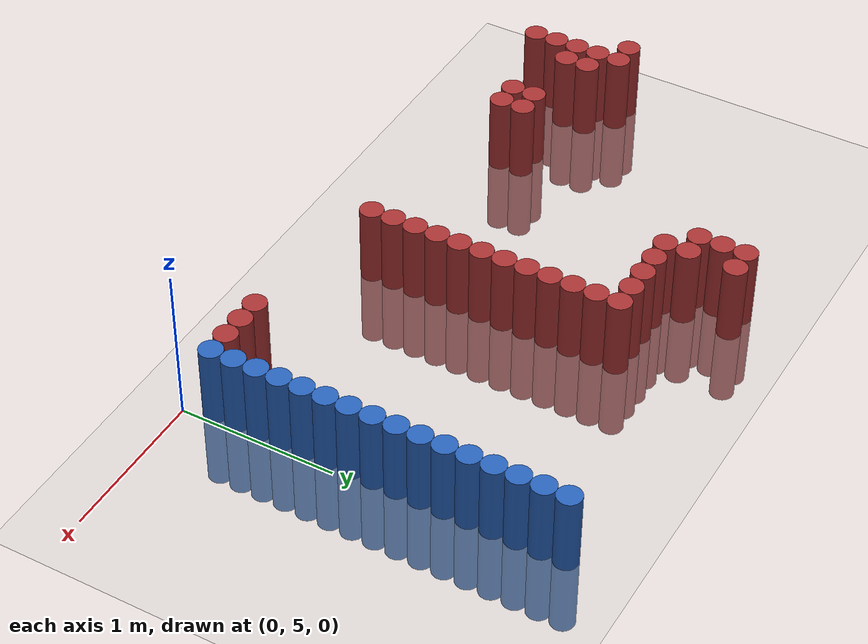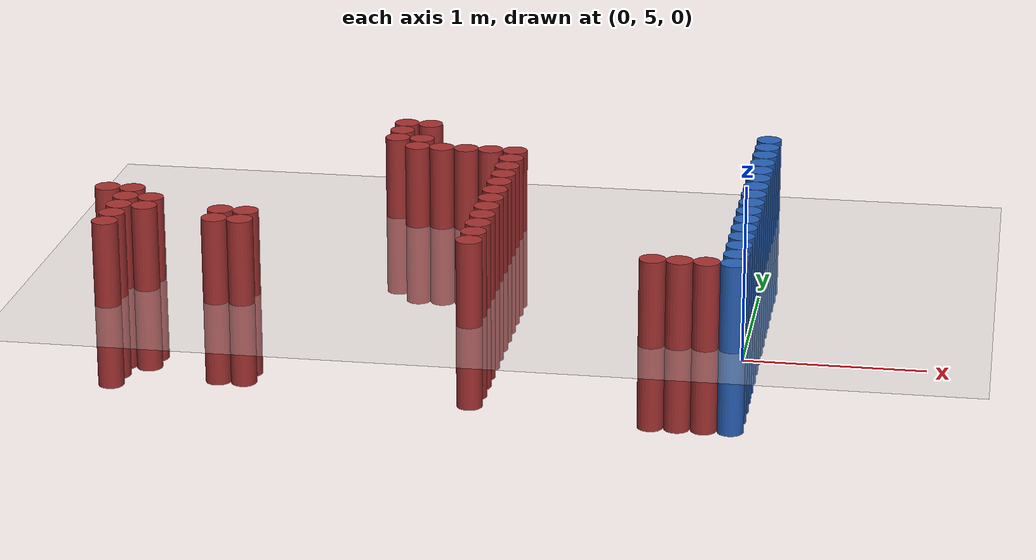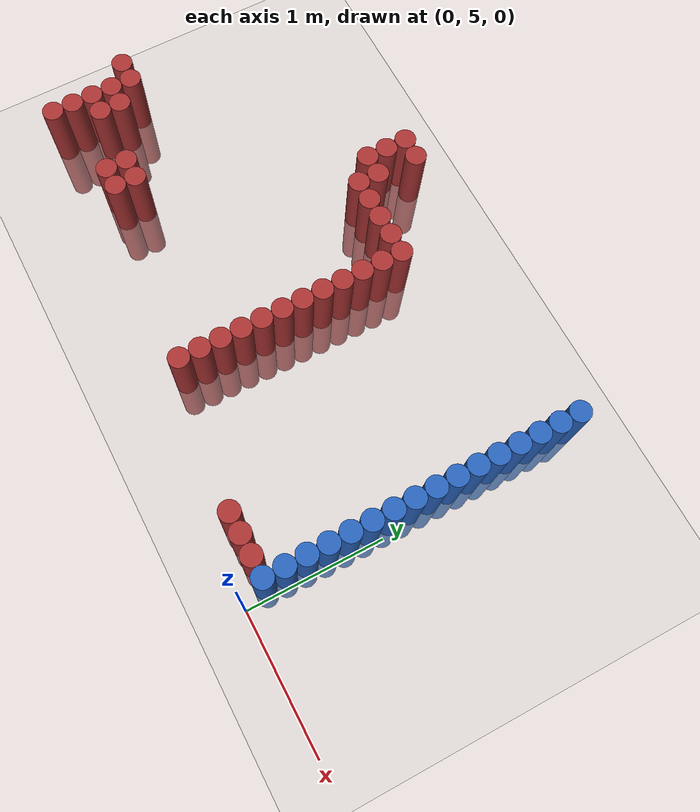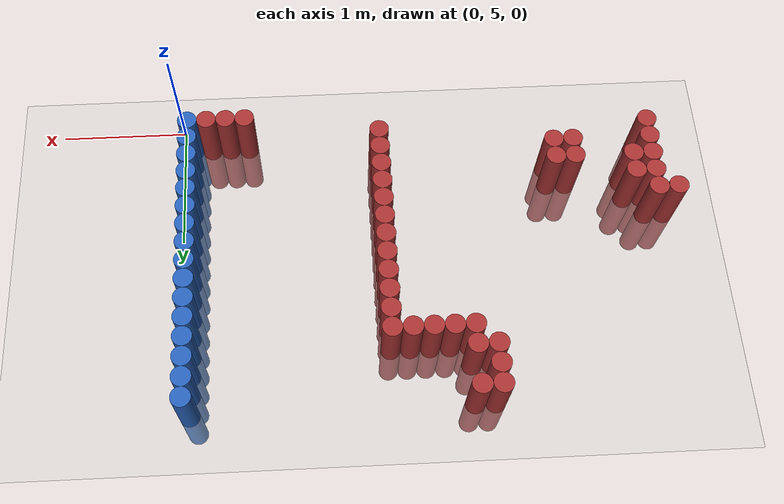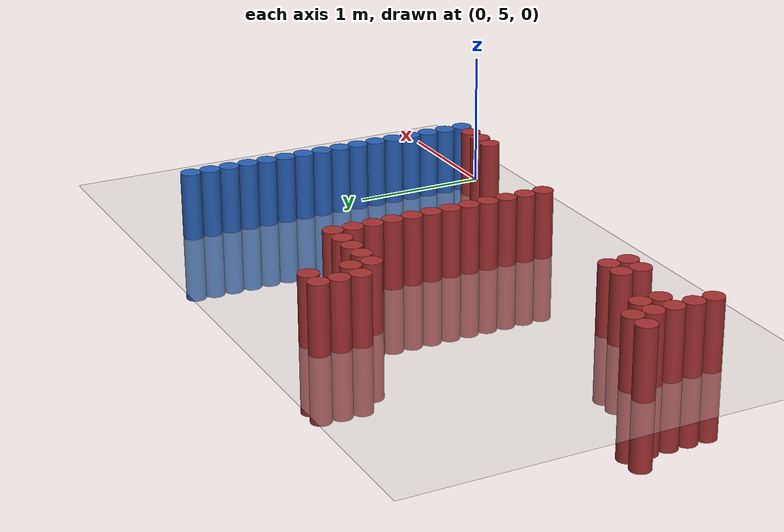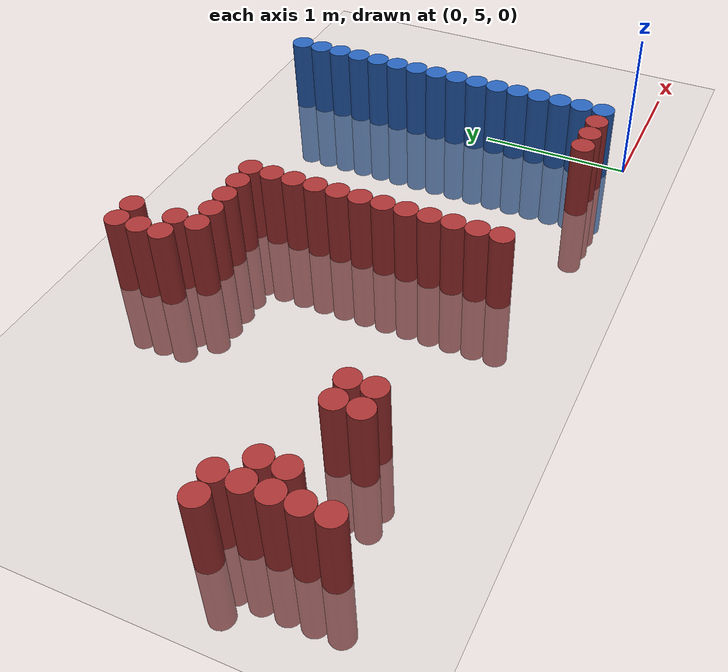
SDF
<sdf version="1.6">
 <world name="default">
  <model name="ground_plane">
   <static>1</static>
   <link name="link">
    <collision name="collision">
     <geometry><plane><normal>0 0 1</normal><size>100 100</size></plane></geometry>
     <surface><friction><ode><mu>100</mu><mu2>50</mu2></ode></friction></surface>
    </collision>
    <visual name="visual">
     <cast_shadows>0</cast_shadows>
     <geometry><plane><normal>0 0 1</normal><size>100 100</size></plane></geometry>
     <material>
      <script><uri>file://media/materials/scripts/gazebo.material</uri><name>Gazebo/Grey</name></script>
     </material>
    </visual>
   </link>
  </model>
  <model name="unit_cylinder_254">
   <static>1</static>
   <pose>-3.825000 5.925000 0.000000 0.000000 0.000000 0.000000</pose>
   <link name="link">
    <inertial>
     <mass>1</mass>
     <inertia><ixx>0.145833</ixx><ixy>0</ixy><ixz>0</ixz><iyy>0.145833</iyy><iyz>0</iyz><izz>0.125</izz></inertia>
    </inertial>
    <collision name="collision">
     <geometry><cylinder><radius>0.075000</radius><length>1</length></cylinder></geometry>
    </collision>
    <visual name="visual">
     <geometry><cylinder><radius>0.075000</radius><length>1</length></cylinder></geometry>
     <material>
      <ambient>0.648000 0.192000 0.192000 1</ambient>
      <diffuse>0.648000 0.192000 0.192000 1</diffuse>
     </material>
     <material>
      <script><name>Gazebo/Grey</name><uri>file://media/materials/scripts/gazebo.material</uri></script>
     </material>
    </visual>
   </link>
  </model>
  <model name="unit_cylinder_259">
   <static>1</static>
   <pose>-3.675000 5.325000 0.000000 0.000000 0.000000 0.000000</pose>
   <link name="link">
    <inertial>
     <mass>1</mass>
     <inertia><ixx>0.145833</ixx><ixy>0</ixy><ixz>0</ixz><iyy>0.145833</iyy><iyz>0</iyz><izz>0.125</izz></inertia>
    </inertial>
    <collision name="collision">
     <geometry><cylinder><radius>0.075000</radius><length>1</length></cylinder></geometry>
    </collision>
    <visual name="visual">
     <geometry><cylinder><radius>0.075000</radius><length>1</length></cylinder></geometry>
     <material>
      <ambient>0.648000 0.192000 0.192000 1</ambient>
      <diffuse>0.648000 0.192000 0.192000 1</diffuse>
     </material>
     <material>
      <script><name>Gazebo/Grey</name><uri>file://media/materials/scripts/gazebo.material</uri></script>
     </material>
    </visual>
   </link>
  </model>
  <model name="unit_cylinder_260">
   <static>1</static>
   <pose>-3.675000 5.475000 0.000000 0.000000 0.000000 0.000000</pose>
   <link name="link">
    <inertial>
     <mass>1</mass>
     <inertia><ixx>0.145833</ixx><ixy>0</ixy><ixz>0</ixz><iyy>0.145833</iyy><iyz>0</iyz><izz>0.125</izz></inertia>
    </inertial>
    <collision name="collision">
     <geometry><cylinder><radius>0.075000</radius><length>1</length></cylinder></geometry>
    </collision>
    <visual name="visual">
     <geometry><cylinder><radius>0.075000</radius><length>1</length></cylinder></geometry>
     <material>
      <ambient>0.648000 0.192000 0.192000 1</ambient>
      <diffuse>0.648000 0.192000 0.192000 1</diffuse>
     </material>
     <material>
      <script><name>Gazebo/Grey</name><uri>file://media/materials/scripts/gazebo.material</uri></script>
     </material>
    </visual>
   </link>
  </model>
  <model name="unit_cylinder_261">
   <static>1</static>
   <pose>-3.675000 5.625000 0.000000 0.000000 0.000000 0.000000</pose>
   <link name="link">
    <inertial>
     <mass>1</mass>
     <inertia><ixx>0.145833</ixx><ixy>0</ixy><ixz>0</ixz><iyy>0.145833</iyy><iyz>0</iyz><izz>0.125</izz></inertia>
    </inertial>
    <collision name="collision">
     <geometry><cylinder><radius>0.075000</radius><length>1</length></cylinder></geometry>
    </collision>
    <visual name="visual">
     <geometry><cylinder><radius>0.075000</radius><length>1</length></cylinder></geometry>
     <material>
      <ambient>0.648000 0.192000 0.192000 1</ambient>
      <diffuse>0.648000 0.192000 0.192000 1</diffuse>
     </material>
     <material>
      <script><name>Gazebo/Grey</name><uri>file://media/materials/scripts/gazebo.material</uri></script>
     </material>
    </visual>
   </link>
  </model>
  <model name="unit_cylinder_262">
   <static>1</static>
   <pose>-3.675000 5.775000 0.000000 0.000000 0.000000 0.000000</pose>
   <link name="link">
    <inertial>
     <mass>1</mass>
     <inertia><ixx>0.145833</ixx><ixy>0</ixy><ixz>0</ixz><iyy>0.145833</iyy><iyz>0</iyz><izz>0.125</izz></inertia>
    </inertial>
    <collision name="collision">
     <geometry><cylinder><radius>0.075000</radius><length>1</length></cylinder></geometry>
    </collision>
    <visual name="visual">
     <geometry><cylinder><radius>0.075000</radius><length>1</length></cylinder></geometry>
     <material>
      <ambient>0.648000 0.192000 0.192000 1</ambient>
      <diffuse>0.648000 0.192000 0.192000 1</diffuse>
     </material>
     <material>
      <script><name>Gazebo/Grey</name><uri>file://media/materials/scripts/gazebo.material</uri></script>
     </material>
    </visual>
   </link>
  </model>
  <model name="unit_cylinder_263">
   <static>1</static>
   <pose>-3.675000 5.925000 0.000000 0.000000 0.000000 0.000000</pose>
   <link name="link">
    <inertial>
     <mass>1</mass>
     <inertia><ixx>0.145833</ixx><ixy>0</ixy><ixz>0</ixz><iyy>0.145833</iyy><iyz>0</iyz><izz>0.125</izz></inertia>
    </inertial>
    <collision name="collision">
     <geometry><cylinder><radius>0.075000</radius><length>1</length></cylinder></geometry>
    </collision>
    <visual name="visual">
     <geometry><cylinder><radius>0.075000</radius><length>1</length></cylinder></geometry>
     <material>
      <ambient>0.648000 0.192000 0.192000 1</ambient>
      <diffuse>0.648000 0.192000 0.192000 1</diffuse>
     </material>
     <material>
      <script><name>Gazebo/Grey</name><uri>file://media/materials/scripts/gazebo.material</uri></script>
     </material>
    </visual>
   </link>
  </model>
  <model name="unit_cylinder_269">
   <static>1</static>
   <pose>-3.525000 5.625000 0.000000 0.000000 0.000000 0.000000</pose>
   <link name="link">
    <inertial>
     <mass>1</mass>
     <inertia><ixx>0.145833</ixx><ixy>0</ixy><ixz>0</ixz><iyy>0.145833</iyy><iyz>0</iyz><izz>0.125</izz></inertia>
    </inertial>
    <collision name="collision">
     <geometry><cylinder><radius>0.075000</radius><length>1</length></cylinder></geometry>
    </collision>
    <visual name="visual">
     <geometry><cylinder><radius>0.075000</radius><length>1</length></cylinder></geometry>
     <material>
      <ambient>0.648000 0.192000 0.192000 1</ambient>
      <diffuse>0.648000 0.192000 0.192000 1</diffuse>
     </material>
     <material>
      <script><name>Gazebo/Grey</name><uri>file://media/materials/scripts/gazebo.material</uri></script>
     </material>
    </visual>
   </link>
  </model>
  <model name="unit_cylinder_270">
   <static>1</static>
   <pose>-3.525000 5.775000 0.000000 0.000000 0.000000 0.000000</pose>
   <link name="link">
    <inertial>
     <mass>1</mass>
     <inertia><ixx>0.145833</ixx><ixy>0</ixy><ixz>0</ixz><iyy>0.145833</iyy><iyz>0</iyz><izz>0.125</izz></inertia>
    </inertial>
    <collision name="collision">
     <geometry><cylinder><radius>0.075000</radius><length>1</length></cylinder></geometry>
    </collision>
    <visual name="visual">
     <geometry><cylinder><radius>0.075000</radius><length>1</length></cylinder></geometry>
     <material>
      <ambient>0.648000 0.192000 0.192000 1</ambient>
      <diffuse>0.648000 0.192000 0.192000 1</diffuse>
     </material>
     <material>
      <script><name>Gazebo/Grey</name><uri>file://media/materials/scripts/gazebo.material</uri></script>
     </material>
    </visual>
   </link>
  </model>
  <model name="unit_cylinder_273">
   <static>1</static>
   <pose>-3.075000 5.475000 0.000000 0.000000 0.000000 0.000000</pose>
   <link name="link">
    <inertial>
     <mass>1</mass>
     <inertia><ixx>0.145833</ixx><ixy>0</ixy><ixz>0</ixz><iyy>0.145833</iyy><iyz>0</iyz><izz>0.125</izz></inertia>
    </inertial>
    <collision name="collision">
     <geometry><cylinder><radius>0.075000</radius><length>1</length></cylinder></geometry>
    </collision>
    <visual name="visual">
     <geometry><cylinder><radius>0.075000</radius><length>1</length></cylinder></geometry>
     <material>
      <ambient>0.648000 0.192000 0.192000 1</ambient>
      <diffuse>0.648000 0.192000 0.192000 1</diffuse>
     </material>
     <material>
      <script><name>Gazebo/Grey</name><uri>file://media/materials/scripts/gazebo.material</uri></script>
     </material>
    </visual>
   </link>
  </model>
  <model name="unit_cylinder_274">
   <static>1</static>
   <pose>-3.075000 5.625000 0.000000 0.000000 0.000000 0.000000</pose>
   <link name="link">
    <inertial>
     <mass>1</mass>
     <inertia><ixx>0.145833</ixx><ixy>0</ixy><ixz>0</ixz><iyy>0.145833</iyy><iyz>0</iyz><izz>0.125</izz></inertia>
    </inertial>
    <collision name="collision">
     <geometry><cylinder><radius>0.075000</radius><length>1</length></cylinder></geometry>
    </collision>
    <visual name="visual">
     <geometry><cylinder><radius>0.075000</radius><length>1</length></cylinder></geometry>
     <material>
      <ambient>0.648000 0.192000 0.192000 1</ambient>
      <diffuse>0.648000 0.192000 0.192000 1</diffuse>
     </material>
     <material>
      <script><name>Gazebo/Grey</name><uri>file://media/materials/scripts/gazebo.material</uri></script>
     </material>
    </visual>
   </link>
  </model>
  <model name="unit_cylinder_275">
   <static>1</static>
   <pose>-2.925000 5.475000 0.000000 0.000000 0.000000 0.000000</pose>
   <link name="link">
    <inertial>
     <mass>1</mass>
     <inertia><ixx>0.145833</ixx><ixy>0</ixy><ixz>0</ixz><iyy>0.145833</iyy><iyz>0</iyz><izz>0.125</izz></inertia>
    </inertial>
    <collision name="collision">
     <geometry><cylinder><radius>0.075000</radius><length>1</length></cylinder></geometry>
    </collision>
    <visual name="visual">
     <geometry><cylinder><radius>0.075000</radius><length>1</length></cylinder></geometry>
     <material>
      <ambient>0.648000 0.192000 0.192000 1</ambient>
      <diffuse>0.648000 0.192000 0.192000 1</diffuse>
     </material>
     <material>
      <script><name>Gazebo/Grey</name><uri>file://media/materials/scripts/gazebo.material</uri></script>
     </material>
    </visual>
   </link>
  </model>
  <model name="unit_cylinder_276">
   <static>1</static>
   <pose>-2.925000 5.625000 0.000000 0.000000 0.000000 0.000000</pose>
   <link name="link">
    <inertial>
     <mass>1</mass>
     <inertia><ixx>0.145833</ixx><ixy>0</ixy><ixz>0</ixz><iyy>0.145833</iyy><iyz>0</iyz><izz>0.125</izz></inertia>
    </inertial>
    <collision name="collision">
     <geometry><cylinder><radius>0.075000</radius><length>1</length></cylinder></geometry>
    </collision>
    <visual name="visual">
     <geometry><cylinder><radius>0.075000</radius><length>1</length></cylinder></geometry>
     <material>
      <ambient>0.648000 0.192000 0.192000 1</ambient>
      <diffuse>0.648000 0.192000 0.192000 1</diffuse>
     </material>
     <material>
      <script><name>Gazebo/Grey</name><uri>file://media/materials/scripts/gazebo.material</uri></script>
     </material>
    </visual>
   </link>
  </model>
  <model name="unit_cylinder_277">
   <static>1</static>
   <pose>-2.325000 7.125000 0.000000 0.000000 0.000000 0.000000</pose>
   <link name="link">
    <inertial>
     <mass>1</mass>
     <inertia><ixx>0.145833</ixx><ixy>0</ixy><ixz>0</ixz><iyy>0.145833</iyy><iyz>0</iyz><izz>0.125</izz></inertia>
    </inertial>
    <collision name="collision">
     <geometry><cylinder><radius>0.075000</radius><length>1</length></cylinder></geometry>
    </collision>
    <visual name="visual">
     <geometry><cylinder><radius>0.075000</radius><length>1</length></cylinder></geometry>
     <material>
      <ambient>0.648000 0.192000 0.192000 1</ambient>
      <diffuse>0.648000 0.192000 0.192000 1</diffuse>
     </material>
     <material>
      <script><name>Gazebo/Grey</name><uri>file://media/materials/scripts/gazebo.material</uri></script>
     </material>
    </visual>
   </link>
  </model>
  <model name="unit_cylinder_278">
   <static>1</static>
   <pose>-2.325000 7.275000 0.000000 0.000000 0.000000 0.000000</pose>
   <link name="link">
    <inertial>
     <mass>1</mass>
     <inertia><ixx>0.145833</ixx><ixy>0</ixy><ixz>0</ixz><iyy>0.145833</iyy><iyz>0</iyz><izz>0.125</izz></inertia>
    </inertial>
    <collision name="collision">
     <geometry><cylinder><radius>0.075000</radius><length>1</length></cylinder></geometry>
    </collision>
    <visual name="visual">
     <geometry><cylinder><radius>0.075000</radius><length>1</length></cylinder></geometry>
     <material>
      <ambient>0.648000 0.192000 0.192000 1</ambient>
      <diffuse>0.648000 0.192000 0.192000 1</diffuse>
     </material>
     <material>
      <script><name>Gazebo/Grey</name><uri>file://media/materials/scripts/gazebo.material</uri></script>
     </material>
    </visual>
   </link>
  </model>
  <model name="unit_cylinder_279">
   <static>1</static>
   <pose>-2.325000 7.425000 0.000000 0.000000 0.000000 0.000000</pose>
   <link name="link">
    <inertial>
     <mass>1</mass>
     <inertia><ixx>0.145833</ixx><ixy>0</ixy><ixz>0</ixz><iyy>0.145833</iyy><iyz>0</iyz><izz>0.125</izz></inertia>
    </inertial>
    <collision name="collision">
     <geometry><cylinder><radius>0.075000</radius><length>1</length></cylinder></geometry>
    </collision>
    <visual name="visual">
     <geometry><cylinder><radius>0.075000</radius><length>1</length></cylinder></geometry>
     <material>
      <ambient>0.648000 0.192000 0.192000 1</ambient>
      <diffuse>0.648000 0.192000 0.192000 1</diffuse>
     </material>
     <material>
      <script><name>Gazebo/Grey</name><uri>file://media/materials/scripts/gazebo.material</uri></script>
     </material>
    </visual>
   </link>
  </model>
  <model name="unit_cylinder_280">
   <static>1</static>
   <pose>-2.175000 6.975000 0.000000 0.000000 0.000000 0.000000</pose>
   <link name="link">
    <inertial>
     <mass>1</mass>
     <inertia><ixx>0.145833</ixx><ixy>0</ixy><ixz>0</ixz><iyy>0.145833</iyy><iyz>0</iyz><izz>0.125</izz></inertia>
    </inertial>
    <collision name="collision">
     <geometry><cylinder><radius>0.075000</radius><length>1</length></cylinder></geometry>
    </collision>
    <visual name="visual">
     <geometry><cylinder><radius>0.075000</radius><length>1</length></cylinder></geometry>
     <material>
      <ambient>0.648000 0.192000 0.192000 1</ambient>
      <diffuse>0.648000 0.192000 0.192000 1</diffuse>
     </material>
     <material>
      <script><name>Gazebo/Grey</name><uri>file://media/materials/scripts/gazebo.material</uri></script>
     </material>
    </visual>
   </link>
  </model>
  <model name="unit_cylinder_281">
   <static>1</static>
   <pose>-2.175000 7.125000 0.000000 0.000000 0.000000 0.000000</pose>
   <link name="link">
    <inertial>
     <mass>1</mass>
     <inertia><ixx>0.145833</ixx><ixy>0</ixy><ixz>0</ixz><iyy>0.145833</iyy><iyz>0</iyz><izz>0.125</izz></inertia>
    </inertial>
    <collision name="collision">
     <geometry><cylinder><radius>0.075000</radius><length>1</length></cylinder></geometry>
    </collision>
    <visual name="visual">
     <geometry><cylinder><radius>0.075000</radius><length>1</length></cylinder></geometry>
     <material>
      <ambient>0.648000 0.192000 0.192000 1</ambient>
      <diffuse>0.648000 0.192000 0.192000 1</diffuse>
     </material>
     <material>
      <script><name>Gazebo/Grey</name><uri>file://media/materials/scripts/gazebo.material</uri></script>
     </material>
    </visual>
   </link>
  </model>
  <model name="unit_cylinder_282">
   <static>1</static>
   <pose>-2.175000 7.425000 0.000000 0.000000 0.000000 0.000000</pose>
   <link name="link">
    <inertial>
     <mass>1</mass>
     <inertia><ixx>0.145833</ixx><ixy>0</ixy><ixz>0</ixz><iyy>0.145833</iyy><iyz>0</iyz><izz>0.125</izz></inertia>
    </inertial>
    <collision name="collision">
     <geometry><cylinder><radius>0.075000</radius><length>1</length></cylinder></geometry>
    </collision>
    <visual name="visual">
     <geometry><cylinder><radius>0.075000</radius><length>1</length></cylinder></geometry>
     <material>
      <ambient>0.648000 0.192000 0.192000 1</ambient>
      <diffuse>0.648000 0.192000 0.192000 1</diffuse>
     </material>
     <material>
      <script><name>Gazebo/Grey</name><uri>file://media/materials/scripts/gazebo.material</uri></script>
     </material>
    </visual>
   </link>
  </model>
  <model name="unit_cylinder_297">
   <static>1</static>
   <pose>-2.025000 6.975000 0.000000 0.000000 0.000000 0.000000</pose>
   <link name="link">
    <inertial>
     <mass>1</mass>
     <inertia><ixx>0.145833</ixx><ixy>0</ixy><ixz>0</ixz><iyy>0.145833</iyy><iyz>0</iyz><izz>0.125</izz></inertia>
    </inertial>
    <collision name="collision">
     <geometry><cylinder><radius>0.075000</radius><length>1</length></cylinder></geometry>
    </collision>
    <visual name="visual">
     <geometry><cylinder><radius>0.075000</radius><length>1</length></cylinder></geometry>
     <material>
      <ambient>0.648000 0.192000 0.192000 1</ambient>
      <diffuse>0.648000 0.192000 0.192000 1</diffuse>
     </material>
     <material>
      <script><name>Gazebo/Grey</name><uri>file://media/materials/scripts/gazebo.material</uri></script>
     </material>
    </visual>
   </link>
  </model>
  <model name="unit_cylinder_299">
   <static>1</static>
   <pose>-1.875000 6.975000 0.000000 0.000000 0.000000 0.000000</pose>
   <link name="link">
    <inertial>
     <mass>1</mass>
     <inertia><ixx>0.145833</ixx><ixy>0</ixy><ixz>0</ixz><iyy>0.145833</iyy><iyz>0</iyz><izz>0.125</izz></inertia>
    </inertial>
    <collision name="collision">
     <geometry><cylinder><radius>0.075000</radius><length>1</length></cylinder></geometry>
    </collision>
    <visual name="visual">
     <geometry><cylinder><radius>0.075000</radius><length>1</length></cylinder></geometry>
     <material>
      <ambient>0.648000 0.192000 0.192000 1</ambient>
      <diffuse>0.648000 0.192000 0.192000 1</diffuse>
     </material>
     <material>
      <script><name>Gazebo/Grey</name><uri>file://media/materials/scripts/gazebo.material</uri></script>
     </material>
    </visual>
   </link>
  </model>
  <model name="unit_cylinder_301">
   <static>1</static>
   <pose>-1.725000 6.975000 0.000000 0.000000 0.000000 0.000000</pose>
   <link name="link">
    <inertial>
     <mass>1</mass>
     <inertia><ixx>0.145833</ixx><ixy>0</ixy><ixz>0</ixz><iyy>0.145833</iyy><iyz>0</iyz><izz>0.125</izz></inertia>
    </inertial>
    <collision name="collision">
     <geometry><cylinder><radius>0.075000</radius><length>1</length></cylinder></geometry>
    </collision>
    <visual name="visual">
     <geometry><cylinder><radius>0.075000</radius><length>1</length></cylinder></geometry>
     <material>
      <ambient>0.648000 0.192000 0.192000 1</ambient>
      <diffuse>0.648000 0.192000 0.192000 1</diffuse>
     </material>
     <material>
      <script><name>Gazebo/Grey</name><uri>file://media/materials/scripts/gazebo.material</uri></script>
     </material>
    </visual>
   </link>
  </model>
  <model name="unit_cylinder_304">
   <static>1</static>
   <pose>-1.575000 5.325000 0.000000 0.000000 0.000000 0.000000</pose>
   <link name="link">
    <inertial>
     <mass>1</mass>
     <inertia><ixx>0.145833</ixx><ixy>0</ixy><ixz>0</ixz><iyy>0.145833</iyy><iyz>0</iyz><izz>0.125</izz></inertia>
    </inertial>
    <collision name="collision">
     <geometry><cylinder><radius>0.075000</radius><length>1</length></cylinder></geometry>
    </collision>
    <visual name="visual">
     <geometry><cylinder><radius>0.075000</radius><length>1</length></cylinder></geometry>
     <material>
      <ambient>0.648000 0.192000 0.192000 1</ambient>
      <diffuse>0.648000 0.192000 0.192000 1</diffuse>
     </material>
     <material>
      <script><name>Gazebo/Grey</name><uri>file://media/materials/scripts/gazebo.material</uri></script>
     </material>
    </visual>
   </link>
  </model>
  <model name="unit_cylinder_305">
   <static>1</static>
   <pose>-1.575000 5.475000 0.000000 0.000000 0.000000 0.000000</pose>
   <link name="link">
    <inertial>
     <mass>1</mass>
     <inertia><ixx>0.145833</ixx><ixy>0</ixy><ixz>0</ixz><iyy>0.145833</iyy><iyz>0</iyz><izz>0.125</izz></inertia>
    </inertial>
    <collision name="collision">
     <geometry><cylinder><radius>0.075000</radius><length>1</length></cylinder></geometry>
    </collision>
    <visual name="visual">
     <geometry><cylinder><radius>0.075000</radius><length>1</length></cylinder></geometry>
     <material>
      <ambient>0.648000 0.192000 0.192000 1</ambient>
      <diffuse>0.648000 0.192000 0.192000 1</diffuse>
     </material>
     <material>
      <script><name>Gazebo/Grey</name><uri>file://media/materials/scripts/gazebo.material</uri></script>
     </material>
    </visual>
   </link>
  </model>
  <model name="unit_cylinder_306">
   <static>1</static>
   <pose>-1.575000 5.625000 0.000000 0.000000 0.000000 0.000000</pose>
   <link name="link">
    <inertial>
     <mass>1</mass>
     <inertia><ixx>0.145833</ixx><ixy>0</ixy><ixz>0</ixz><iyy>0.145833</iyy><iyz>0</iyz><izz>0.125</izz></inertia>
    </inertial>
    <collision name="collision">
     <geometry><cylinder><radius>0.075000</radius><length>1</length></cylinder></geometry>
    </collision>
    <visual name="visual">
     <geometry><cylinder><radius>0.075000</radius><length>1</length></cylinder></geometry>
     <material>
      <ambient>0.648000 0.192000 0.192000 1</ambient>
      <diffuse>0.648000 0.192000 0.192000 1</diffuse>
     </material>
     <material>
      <script><name>Gazebo/Grey</name><uri>file://media/materials/scripts/gazebo.material</uri></script>
     </material>
    </visual>
   </link>
  </model>
  <model name="unit_cylinder_307">
   <static>1</static>
   <pose>-1.575000 5.775000 0.000000 0.000000 0.000000 0.000000</pose>
   <link name="link">
    <inertial>
     <mass>1</mass>
     <inertia><ixx>0.145833</ixx><ixy>0</ixy><ixz>0</ixz><iyy>0.145833</iyy><iyz>0</iyz><izz>0.125</izz></inertia>
    </inertial>
    <collision name="collision">
     <geometry><cylinder><radius>0.075000</radius><length>1</length></cylinder></geometry>
    </collision>
    <visual name="visual">
     <geometry><cylinder><radius>0.075000</radius><length>1</length></cylinder></geometry>
     <material>
      <ambient>0.648000 0.192000 0.192000 1</ambient>
      <diffuse>0.648000 0.192000 0.192000 1</diffuse>
     </material>
     <material>
      <script><name>Gazebo/Grey</name><uri>file://media/materials/scripts/gazebo.material</uri></script>
     </material>
    </visual>
   </link>
  </model>
  <model name="unit_cylinder_308">
   <static>1</static>
   <pose>-1.575000 5.925000 0.000000 0.000000 0.000000 0.000000</pose>
   <link name="link">
    <inertial>
     <mass>1</mass>
     <inertia><ixx>0.145833</ixx><ixy>0</ixy><ixz>0</ixz><iyy>0.145833</iyy><iyz>0</iyz><izz>0.125</izz></inertia>
    </inertial>
    <collision name="collision">
     <geometry><cylinder><radius>0.075000</radius><length>1</length></cylinder></geometry>
    </collision>
    <visual name="visual">
     <geometry><cylinder><radius>0.075000</radius><length>1</length></cylinder></geometry>
     <material>
      <ambient>0.648000 0.192000 0.192000 1</ambient>
      <diffuse>0.648000 0.192000 0.192000 1</diffuse>
     </material>
     <material>
      <script><name>Gazebo/Grey</name><uri>file://media/materials/scripts/gazebo.material</uri></script>
     </material>
    </visual>
   </link>
  </model>
  <model name="unit_cylinder_309">
   <static>1</static>
   <pose>-1.575000 6.075000 0.000000 0.000000 0.000000 0.000000</pose>
   <link name="link">
    <inertial>
     <mass>1</mass>
     <inertia><ixx>0.145833</ixx><ixy>0</ixy><ixz>0</ixz><iyy>0.145833</iyy><iyz>0</iyz><izz>0.125</izz></inertia>
    </inertial>
    <collision name="collision">
     <geometry><cylinder><radius>0.075000</radius><length>1</length></cylinder></geometry>
    </collision>
    <visual name="visual">
     <geometry><cylinder><radius>0.075000</radius><length>1</length></cylinder></geometry>
     <material>
      <ambient>0.648000 0.192000 0.192000 1</ambient>
      <diffuse>0.648000 0.192000 0.192000 1</diffuse>
     </material>
     <material>
      <script><name>Gazebo/Grey</name><uri>file://media/materials/scripts/gazebo.material</uri></script>
     </material>
    </visual>
   </link>
  </model>
  <model name="unit_cylinder_310">
   <static>1</static>
   <pose>-1.575000 6.225000 0.000000 0.000000 0.000000 0.000000</pose>
   <link name="link">
    <inertial>
     <mass>1</mass>
     <inertia><ixx>0.145833</ixx><ixy>0</ixy><ixz>0</ixz><iyy>0.145833</iyy><iyz>0</iyz><izz>0.125</izz></inertia>
    </inertial>
    <collision name="collision">
     <geometry><cylinder><radius>0.075000</radius><length>1</length></cylinder></geometry>
    </collision>
    <visual name="visual">
     <geometry><cylinder><radius>0.075000</radius><length>1</length></cylinder></geometry>
     <material>
      <ambient>0.648000 0.192000 0.192000 1</ambient>
      <diffuse>0.648000 0.192000 0.192000 1</diffuse>
     </material>
     <material>
      <script><name>Gazebo/Grey</name><uri>file://media/materials/scripts/gazebo.material</uri></script>
     </material>
    </visual>
   </link>
  </model>
  <model name="unit_cylinder_311">
   <static>1</static>
   <pose>-1.575000 6.375000 0.000000 0.000000 0.000000 0.000000</pose>
   <link name="link">
    <inertial>
     <mass>1</mass>
     <inertia><ixx>0.145833</ixx><ixy>0</ixy><ixz>0</ixz><iyy>0.145833</iyy><iyz>0</iyz><izz>0.125</izz></inertia>
    </inertial>
    <collision name="collision">
     <geometry><cylinder><radius>0.075000</radius><length>1</length></cylinder></geometry>
    </collision>
    <visual name="visual">
     <geometry><cylinder><radius>0.075000</radius><length>1</length></cylinder></geometry>
     <material>
      <ambient>0.648000 0.192000 0.192000 1</ambient>
      <diffuse>0.648000 0.192000 0.192000 1</diffuse>
     </material>
     <material>
      <script><name>Gazebo/Grey</name><uri>file://media/materials/scripts/gazebo.material</uri></script>
     </material>
    </visual>
   </link>
  </model>
  <model name="unit_cylinder_312">
   <static>1</static>
   <pose>-1.575000 6.525000 0.000000 0.000000 0.000000 0.000000</pose>
   <link name="link">
    <inertial>
     <mass>1</mass>
     <inertia><ixx>0.145833</ixx><ixy>0</ixy><ixz>0</ixz><iyy>0.145833</iyy><iyz>0</iyz><izz>0.125</izz></inertia>
    </inertial>
    <collision name="collision">
     <geometry><cylinder><radius>0.075000</radius><length>1</length></cylinder></geometry>
    </collision>
    <visual name="visual">
     <geometry><cylinder><radius>0.075000</radius><length>1</length></cylinder></geometry>
     <material>
      <ambient>0.648000 0.192000 0.192000 1</ambient>
      <diffuse>0.648000 0.192000 0.192000 1</diffuse>
     </material>
     <material>
      <script><name>Gazebo/Grey</name><uri>file://media/materials/scripts/gazebo.material</uri></script>
     </material>
    </visual>
   </link>
  </model>
  <model name="unit_cylinder_313">
   <static>1</static>
   <pose>-1.575000 6.675000 0.000000 0.000000 0.000000 0.000000</pose>
   <link name="link">
    <inertial>
     <mass>1</mass>
     <inertia><ixx>0.145833</ixx><ixy>0</ixy><ixz>0</ixz><iyy>0.145833</iyy><iyz>0</iyz><izz>0.125</izz></inertia>
    </inertial>
    <collision name="collision">
     <geometry><cylinder><radius>0.075000</radius><length>1</length></cylinder></geometry>
    </collision>
    <visual name="visual">
     <geometry><cylinder><radius>0.075000</radius><length>1</length></cylinder></geometry>
     <material>
      <ambient>0.648000 0.192000 0.192000 1</ambient>
      <diffuse>0.648000 0.192000 0.192000 1</diffuse>
     </material>
     <material>
      <script><name>Gazebo/Grey</name><uri>file://media/materials/scripts/gazebo.material</uri></script>
     </material>
    </visual>
   </link>
  </model>
  <model name="unit_cylinder_314">
   <static>1</static>
   <pose>-1.575000 6.825000 0.000000 0.000000 0.000000 0.000000</pose>
   <link name="link">
    <inertial>
     <mass>1</mass>
     <inertia><ixx>0.145833</ixx><ixy>0</ixy><ixz>0</ixz><iyy>0.145833</iyy><iyz>0</iyz><izz>0.125</izz></inertia>
    </inertial>
    <collision name="collision">
     <geometry><cylinder><radius>0.075000</radius><length>1</length></cylinder></geometry>
    </collision>
    <visual name="visual">
     <geometry><cylinder><radius>0.075000</radius><length>1</length></cylinder></geometry>
     <material>
      <ambient>0.648000 0.192000 0.192000 1</ambient>
      <diffuse>0.648000 0.192000 0.192000 1</diffuse>
     </material>
     <material>
      <script><name>Gazebo/Grey</name><uri>file://media/materials/scripts/gazebo.material</uri></script>
     </material>
    </visual>
   </link>
  </model>
  <model name="unit_cylinder_315">
   <static>1</static>
   <pose>-1.575000 6.975000 0.000000 0.000000 0.000000 0.000000</pose>
   <link name="link">
    <inertial>
     <mass>1</mass>
     <inertia><ixx>0.145833</ixx><ixy>0</ixy><ixz>0</ixz><iyy>0.145833</iyy><iyz>0</iyz><izz>0.125</izz></inertia>
    </inertial>
    <collision name="collision">
     <geometry><cylinder><radius>0.075000</radius><length>1</length></cylinder></geometry>
    </collision>
    <visual name="visual">
     <geometry><cylinder><radius>0.075000</radius><length>1</length></cylinder></geometry>
     <material>
      <ambient>0.648000 0.192000 0.192000 1</ambient>
      <diffuse>0.648000 0.192000 0.192000 1</diffuse>
     </material>
     <material>
      <script><name>Gazebo/Grey</name><uri>file://media/materials/scripts/gazebo.material</uri></script>
     </material>
    </visual>
   </link>
  </model>
  <model name="unit_cylinder_329">
   <static>1</static>
   <pose>-0.525000 5.175000 0.000000 0.000000 0.000000 0.000000</pose>
   <link name="link">
    <inertial>
     <mass>1</mass>
     <inertia><ixx>0.145833</ixx><ixy>0</ixy><ixz>0</ixz><iyy>0.145833</iyy><iyz>0</iyz><izz>0.125</izz></inertia>
    </inertial>
    <collision name="collision">
     <geometry><cylinder><radius>0.075000</radius><length>1</length></cylinder></geometry>
    </collision>
    <visual name="visual">
     <geometry><cylinder><radius>0.075000</radius><length>1</length></cylinder></geometry>
     <material>
      <ambient>0.648000 0.192000 0.192000 1</ambient>
      <diffuse>0.648000 0.192000 0.192000 1</diffuse>
     </material>
     <material>
      <script><name>Gazebo/Grey</name><uri>file://media/materials/scripts/gazebo.material</uri></script>
     </material>
    </visual>
   </link>
  </model>
  <model name="unit_cylinder_331">
   <static>1</static>
   <pose>-0.375000 5.175000 0.000000 0.000000 0.000000 0.000000</pose>
   <link name="link">
    <inertial>
     <mass>1</mass>
     <inertia><ixx>0.145833</ixx><ixy>0</ixy><ixz>0</ixz><iyy>0.145833</iyy><iyz>0</iyz><izz>0.125</izz></inertia>
    </inertial>
    <collision name="collision">
     <geometry><cylinder><radius>0.075000</radius><length>1</length></cylinder></geometry>
    </collision>
    <visual name="visual">
     <geometry><cylinder><radius>0.075000</radius><length>1</length></cylinder></geometry>
     <material>
      <ambient>0.648000 0.192000 0.192000 1</ambient>
      <diffuse>0.648000 0.192000 0.192000 1</diffuse>
     </material>
     <material>
      <script><name>Gazebo/Grey</name><uri>file://media/materials/scripts/gazebo.material</uri></script>
     </material>
    </visual>
   </link>
  </model>
  <model name="unit_cylinder_333">
   <static>1</static>
   <pose>-0.225000 5.175000 0.000000 0.000000 0.000000 0.000000</pose>
   <link name="link">
    <inertial>
     <mass>1</mass>
     <inertia><ixx>0.145833</ixx><ixy>0</ixy><ixz>0</ixz><iyy>0.145833</iyy><iyz>0</iyz><izz>0.125</izz></inertia>
    </inertial>
    <collision name="collision">
     <geometry><cylinder><radius>0.075000</radius><length>1</length></cylinder></geometry>
    </collision>
    <visual name="visual">
     <geometry><cylinder><radius>0.075000</radius><length>1</length></cylinder></geometry>
     <material>
      <ambient>0.648000 0.192000 0.192000 1</ambient>
      <diffuse>0.648000 0.192000 0.192000 1</diffuse>
     </material>
     <material>
      <script><name>Gazebo/Grey</name><uri>file://media/materials/scripts/gazebo.material</uri></script>
     </material>
    </visual>
   </link>
  </model>
  <model name="unit_cylinder_335">
   <static>1</static>
   <pose>-0.075000 5.175000 0.000000 0.000000 0.000000 0.000000</pose>
   <link name="link">
    <inertial>
     <mass>1</mass>
     <inertia><ixx>0.145833</ixx><ixy>0</ixy><ixz>0</ixz><iyy>0.145833</iyy><iyz>0</iyz><izz>0.125</izz></inertia>
    </inertial>
    <collision name="collision">
     <geometry><cylinder><radius>0.075000</radius><length>1</length></cylinder></geometry>
    </collision>
    <visual name="visual">
     <geometry><cylinder><radius>0.075000</radius><length>1</length></cylinder></geometry>
     <material>
      <ambient>0.152000 0.379000 0.720000 1</ambient>
      <diffuse>0.152000 0.379000 0.720000 1</diffuse>
     </material>
     <material>
      <script><name>Gazebo/Grey</name><uri>file://media/materials/scripts/gazebo.material</uri></script>
     </material>
    </visual>
   </link>
  </model>
  <model name="unit_cylinder_336">
   <static>1</static>
   <pose>-0.075000 5.325000 0.000000 0.000000 0.000000 0.000000</pose>
   <link name="link">
    <inertial>
     <mass>1</mass>
     <inertia><ixx>0.145833</ixx><ixy>0</ixy><ixz>0</ixz><iyy>0.145833</iyy><iyz>0</iyz><izz>0.125</izz></inertia>
    </inertial>
    <collision name="collision">
     <geometry><cylinder><radius>0.075000</radius><length>1</length></cylinder></geometry>
    </collision>
    <visual name="visual">
     <geometry><cylinder><radius>0.075000</radius><length>1</length></cylinder></geometry>
     <material>
      <ambient>0.152000 0.379000 0.720000 1</ambient>
      <diffuse>0.152000 0.379000 0.720000 1</diffuse>
     </material>
     <material>
      <script><name>Gazebo/Grey</name><uri>file://media/materials/scripts/gazebo.material</uri></script>
     </material>
    </visual>
   </link>
  </model>
  <model name="unit_cylinder_337">
   <static>1</static>
   <pose>-0.075000 5.475000 0.000000 0.000000 0.000000 0.000000</pose>
   <link name="link">
    <inertial>
     <mass>1</mass>
     <inertia><ixx>0.145833</ixx><ixy>0</ixy><ixz>0</ixz><iyy>0.145833</iyy><iyz>0</iyz><izz>0.125</izz></inertia>
    </inertial>
    <collision name="collision">
     <geometry><cylinder><radius>0.075000</radius><length>1</length></cylinder></geometry>
    </collision>
    <visual name="visual">
     <geometry><cylinder><radius>0.075000</radius><length>1</length></cylinder></geometry>
     <material>
      <ambient>0.152000 0.379000 0.720000 1</ambient>
      <diffuse>0.152000 0.379000 0.720000 1</diffuse>
     </material>
     <material>
      <script><name>Gazebo/Grey</name><uri>file://media/materials/scripts/gazebo.material</uri></script>
     </material>
    </visual>
   </link>
  </model>
  <model name="unit_cylinder_338">
   <static>1</static>
   <pose>-0.075000 5.625000 0.000000 0.000000 0.000000 0.000000</pose>
   <link name="link">
    <inertial>
     <mass>1</mass>
     <inertia><ixx>0.145833</ixx><ixy>0</ixy><ixz>0</ixz><iyy>0.145833</iyy><iyz>0</iyz><izz>0.125</izz></inertia>
    </inertial>
    <collision name="collision">
     <geometry><cylinder><radius>0.075000</radius><length>1</length></cylinder></geometry>
    </collision>
    <visual name="visual">
     <geometry><cylinder><radius>0.075000</radius><length>1</length></cylinder></geometry>
     <material>
      <ambient>0.152000 0.379000 0.720000 1</ambient>
      <diffuse>0.152000 0.379000 0.720000 1</diffuse>
     </material>
     <material>
      <script><name>Gazebo/Grey</name><uri>file://media/materials/scripts/gazebo.material</uri></script>
     </material>
    </visual>
   </link>
  </model>
  <model name="unit_cylinder_339">
   <static>1</static>
   <pose>-0.075000 5.775000 0.000000 0.000000 0.000000 0.000000</pose>
   <link name="link">
    <inertial>
     <mass>1</mass>
     <inertia><ixx>0.145833</ixx><ixy>0</ixy><ixz>0</ixz><iyy>0.145833</iyy><iyz>0</iyz><izz>0.125</izz></inertia>
    </inertial>
    <collision name="collision">
     <geometry><cylinder><radius>0.075000</radius><length>1</length></cylinder></geometry>
    </collision>
    <visual name="visual">
     <geometry><cylinder><radius>0.075000</radius><length>1</length></cylinder></geometry>
     <material>
      <ambient>0.152000 0.379000 0.720000 1</ambient>
      <diffuse>0.152000 0.379000 0.720000 1</diffuse>
     </material>
     <material>
      <script><name>Gazebo/Grey</name><uri>file://media/materials/scripts/gazebo.material</uri></script>
     </material>
    </visual>
   </link>
  </model>
  <model name="unit_cylinder_340">
   <static>1</static>
   <pose>-0.075000 5.925000 0.000000 0.000000 0.000000 0.000000</pose>
   <link name="link">
    <inertial>
     <mass>1</mass>
     <inertia><ixx>0.145833</ixx><ixy>0</ixy><ixz>0</ixz><iyy>0.145833</iyy><iyz>0</iyz><izz>0.125</izz></inertia>
    </inertial>
    <collision name="collision">
     <geometry><cylinder><radius>0.075000</radius><length>1</length></cylinder></geometry>
    </collision>
    <visual name="visual">
     <geometry><cylinder><radius>0.075000</radius><length>1</length></cylinder></geometry>
     <material>
      <ambient>0.152000 0.379000 0.720000 1</ambient>
      <diffuse>0.152000 0.379000 0.720000 1</diffuse>
     </material>
     <material>
      <script><name>Gazebo/Grey</name><uri>file://media/materials/scripts/gazebo.material</uri></script>
     </material>
    </visual>
   </link>
  </model>
  <model name="unit_cylinder_341">
   <static>1</static>
   <pose>-0.075000 6.075000 0.000000 0.000000 0.000000 0.000000</pose>
   <link name="link">
    <inertial>
     <mass>1</mass>
     <inertia><ixx>0.145833</ixx><ixy>0</ixy><ixz>0</ixz><iyy>0.145833</iyy><iyz>0</iyz><izz>0.125</izz></inertia>
    </inertial>
    <collision name="collision">
     <geometry><cylinder><radius>0.075000</radius><length>1</length></cylinder></geometry>
    </collision>
    <visual name="visual">
     <geometry><cylinder><radius>0.075000</radius><length>1</length></cylinder></geometry>
     <material>
      <ambient>0.152000 0.379000 0.720000 1</ambient>
      <diffuse>0.152000 0.379000 0.720000 1</diffuse>
     </material>
     <material>
      <script><name>Gazebo/Grey</name><uri>file://media/materials/scripts/gazebo.material</uri></script>
     </material>
    </visual>
   </link>
  </model>
  <model name="unit_cylinder_342">
   <static>1</static>
   <pose>-0.075000 6.225000 0.000000 0.000000 0.000000 0.000000</pose>
   <link name="link">
    <inertial>
     <mass>1</mass>
     <inertia><ixx>0.145833</ixx><ixy>0</ixy><ixz>0</ixz><iyy>0.145833</iyy><iyz>0</iyz><izz>0.125</izz></inertia>
    </inertial>
    <collision name="collision">
     <geometry><cylinder><radius>0.075000</radius><length>1</length></cylinder></geometry>
    </collision>
    <visual name="visual">
     <geometry><cylinder><radius>0.075000</radius><length>1</length></cylinder></geometry>
     <material>
      <ambient>0.152000 0.379000 0.720000 1</ambient>
      <diffuse>0.152000 0.379000 0.720000 1</diffuse>
     </material>
     <material>
      <script><name>Gazebo/Grey</name><uri>file://media/materials/scripts/gazebo.material</uri></script>
     </material>
    </visual>
   </link>
  </model>
  <model name="unit_cylinder_343">
   <static>1</static>
   <pose>-0.075000 6.375000 0.000000 0.000000 0.000000 0.000000</pose>
   <link name="link">
    <inertial>
     <mass>1</mass>
     <inertia><ixx>0.145833</ixx><ixy>0</ixy><ixz>0</ixz><iyy>0.145833</iyy><iyz>0</iyz><izz>0.125</izz></inertia>
    </inertial>
    <collision name="collision">
     <geometry><cylinder><radius>0.075000</radius><length>1</length></cylinder></geometry>
    </collision>
    <visual name="visual">
     <geometry><cylinder><radius>0.075000</radius><length>1</length></cylinder></geometry>
     <material>
      <ambient>0.152000 0.379000 0.720000 1</ambient>
      <diffuse>0.152000 0.379000 0.720000 1</diffuse>
     </material>
     <material>
      <script><name>Gazebo/Grey</name><uri>file://media/materials/scripts/gazebo.material</uri></script>
     </material>
    </visual>
   </link>
  </model>
  <model name="unit_cylinder_344">
   <static>1</static>
   <pose>-0.075000 6.525000 0.000000 0.000000 0.000000 0.000000</pose>
   <link name="link">
    <inertial>
     <mass>1</mass>
     <inertia><ixx>0.145833</ixx><ixy>0</ixy><ixz>0</ixz><iyy>0.145833</iyy><iyz>0</iyz><izz>0.125</izz></inertia>
    </inertial>
    <collision name="collision">
     <geometry><cylinder><radius>0.075000</radius><length>1</length></cylinder></geometry>
    </collision>
    <visual name="visual">
     <geometry><cylinder><radius>0.075000</radius><length>1</length></cylinder></geometry>
     <material>
      <ambient>0.152000 0.379000 0.720000 1</ambient>
      <diffuse>0.152000 0.379000 0.720000 1</diffuse>
     </material>
     <material>
      <script><name>Gazebo/Grey</name><uri>file://media/materials/scripts/gazebo.material</uri></script>
     </material>
    </visual>
   </link>
  </model>
  <model name="unit_cylinder_345">
   <static>1</static>
   <pose>-0.075000 6.675000 0.000000 0.000000 0.000000 0.000000</pose>
   <link name="link">
    <inertial>
     <mass>1</mass>
     <inertia><ixx>0.145833</ixx><ixy>0</ixy><ixz>0</ixz><iyy>0.145833</iyy><iyz>0</iyz><izz>0.125</izz></inertia>
    </inertial>
    <collision name="collision">
     <geometry><cylinder><radius>0.075000</radius><length>1</length></cylinder></geometry>
    </collision>
    <visual name="visual">
     <geometry><cylinder><radius>0.075000</radius><length>1</length></cylinder></geometry>
     <material>
      <ambient>0.152000 0.379000 0.720000 1</ambient>
      <diffuse>0.152000 0.379000 0.720000 1</diffuse>
     </material>
     <material>
      <script><name>Gazebo/Grey</name><uri>file://media/materials/scripts/gazebo.material</uri></script>
     </material>
    </visual>
   </link>
  </model>
  <model name="unit_cylinder_346">
   <static>1</static>
   <pose>-0.075000 6.825000 0.000000 0.000000 0.000000 0.000000</pose>
   <link name="link">
    <inertial>
     <mass>1</mass>
     <inertia><ixx>0.145833</ixx><ixy>0</ixy><ixz>0</ixz><iyy>0.145833</iyy><iyz>0</iyz><izz>0.125</izz></inertia>
    </inertial>
    <collision name="collision">
     <geometry><cylinder><radius>0.075000</radius><length>1</length></cylinder></geometry>
    </collision>
    <visual name="visual">
     <geometry><cylinder><radius>0.075000</radius><length>1</length></cylinder></geometry>
     <material>
      <ambient>0.152000 0.379000 0.720000 1</ambient>
      <diffuse>0.152000 0.379000 0.720000 1</diffuse>
     </material>
     <material>
      <script><name>Gazebo/Grey</name><uri>file://media/materials/scripts/gazebo.material</uri></script>
     </material>
    </visual>
   </link>
  </model>
  <model name="unit_cylinder_347">
   <static>1</static>
   <pose>-0.075000 6.975000 0.000000 0.000000 0.000000 0.000000</pose>
   <link name="link">
    <inertial>
     <mass>1</mass>
     <inertia><ixx>0.145833</ixx><ixy>0</ixy><ixz>0</ixz><iyy>0.145833</iyy><iyz>0</iyz><izz>0.125</izz></inertia>
    </inertial>
    <collision name="collision">
     <geometry><cylinder><radius>0.075000</radius><length>1</length></cylinder></geometry>
    </collision>
    <visual name="visual">
     <geometry><cylinder><radius>0.075000</radius><length>1</length></cylinder></geometry>
     <material>
      <ambient>0.152000 0.379000 0.720000 1</ambient>
      <diffuse>0.152000 0.379000 0.720000 1</diffuse>
     </material>
     <material>
      <script><name>Gazebo/Grey</name><uri>file://media/materials/scripts/gazebo.material</uri></script>
     </material>
    </visual>
   </link>
  </model>
  <model name="unit_cylinder_348">
   <static>1</static>
   <pose>-0.075000 7.125000 0.000000 0.000000 0.000000 0.000000</pose>
   <link name="link">
    <inertial>
     <mass>1</mass>
     <inertia><ixx>0.145833</ixx><ixy>0</ixy><ixz>0</ixz><iyy>0.145833</iyy><iyz>0</iyz><izz>0.125</izz></inertia>
    </inertial>
    <collision name="collision">
     <geometry><cylinder><radius>0.075000</radius><length>1</length></cylinder></geometry>
    </collision>
    <visual name="visual">
     <geometry><cylinder><radius>0.075000</radius><length>1</length></cylinder></geometry>
     <material>
      <ambient>0.152000 0.379000 0.720000 1</ambient>
      <diffuse>0.152000 0.379000 0.720000 1</diffuse>
     </material>
     <material>
      <script><name>Gazebo/Grey</name><uri>file://media/materials/scripts/gazebo.material</uri></script>
     </material>
    </visual>
   </link>
  </model>
  <model name="unit_cylinder_349">
   <static>1</static>
   <pose>-0.075000 7.275000 0.000000 0.000000 0.000000 0.000000</pose>
   <link name="link">
    <inertial>
     <mass>1</mass>
     <inertia><ixx>0.145833</ixx><ixy>0</ixy><ixz>0</ixz><iyy>0.145833</iyy><iyz>0</iyz><izz>0.125</izz></inertia>
    </inertial>
    <collision name="collision">
     <geometry><cylinder><radius>0.075000</radius><length>1</length></cylinder></geometry>
    </collision>
    <visual name="visual">
     <geometry><cylinder><radius>0.075000</radius><length>1</length></cylinder></geometry>
     <material>
      <ambient>0.152000 0.379000 0.720000 1</ambient>
      <diffuse>0.152000 0.379000 0.720000 1</diffuse>
     </material>
     <material>
      <script><name>Gazebo/Grey</name><uri>file://media/materials/scripts/gazebo.material</uri></script>
     </material>
    </visual>
   </link>
  </model>
  <model name="unit_cylinder_350">
   <static>1</static>
   <pose>-0.075000 7.425000 0.000000 0.000000 0.000000 0.000000</pose>
   <link name="link">
    <inertial>
     <mass>1</mass>
     <inertia><ixx>0.145833</ixx><ixy>0</ixy><ixz>0</ixz><iyy>0.145833</iyy><iyz>0</iyz><izz>0.125</izz></inertia>
    </inertial>
    <collision name="collision">
     <geometry><cylinder><radius>0.075000</radius><length>1</length></cylinder></geometry>
    </collision>
    <visual name="visual">
     <geometry><cylinder><radius>0.075000</radius><length>1</length></cylinder></geometry>
     <material>
      <ambient>0.152000 0.379000 0.720000 1</ambient>
      <diffuse>0.152000 0.379000 0.720000 1</diffuse>
     </material>
     <material>
      <script><name>Gazebo/Grey</name><uri>file://media/materials/scripts/gazebo.material</uri></script>
     </material>
    </visual>
   </link>
  </model>
 </world>
</sdf>
